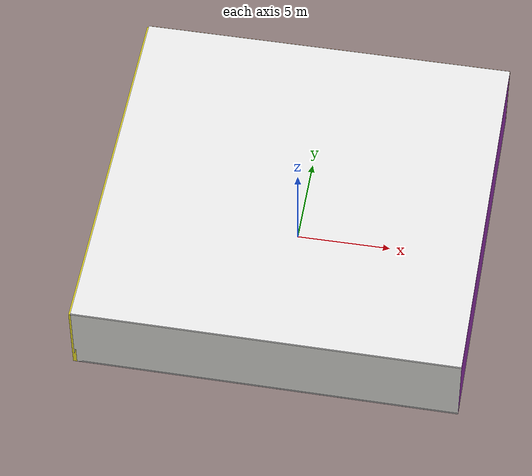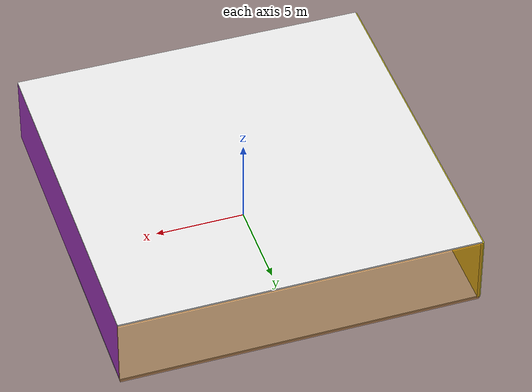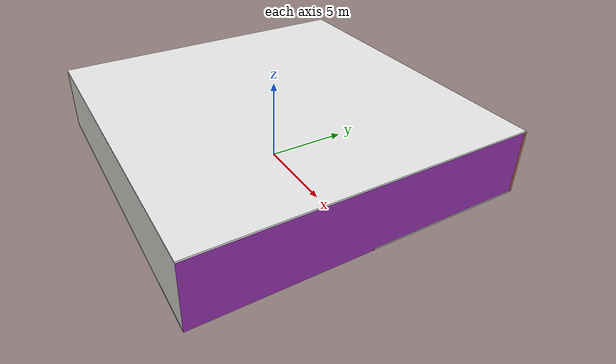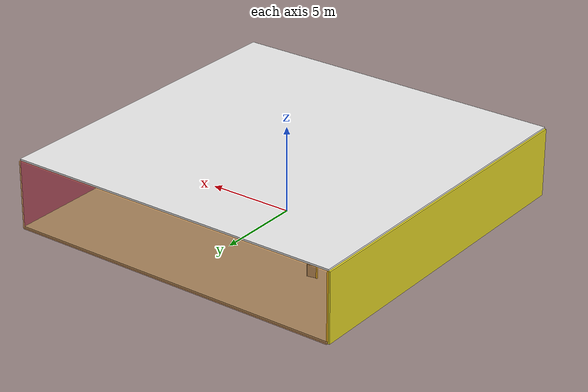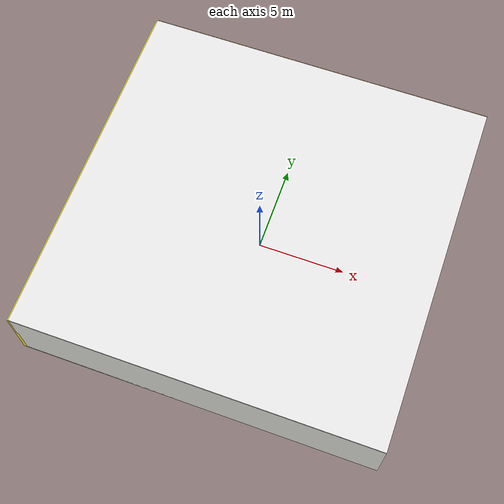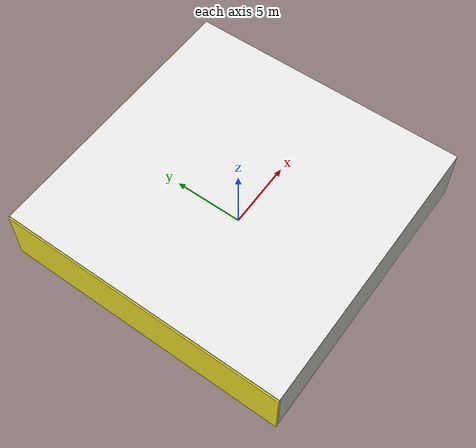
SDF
<sdf version="1.4">
 <world name="default">
  <physics type="ode">
   <max_step_size>0.001</max_step_size>
   <real_time_factor>1</real_time_factor>
   <real_time_update_rate>1000</real_time_update_rate>
   <gravity>0 0 -9.8</gravity>
  </physics>
  <scene><ambient>0.4 0.4 0.4 1</ambient><background>0.7 0.7 0.7 1</background><shadows>1</shadows></scene>
  <model name="Surrounding">
   <static>1</static>
   <link name="Ceiling">
    <collision name="Ceiling_Collision"><geometry><box><size>20 20 0.1</size></box></geometry></collision>
    <visual name="Ceiling_Visual">
     <geometry><box><size>20 20 0.1</size></box></geometry>
     <material>
      <script><uri>file://media/materials/scripts/gazebo.material</uri><name>Gazebo/WhiteGlow</name></script>
     </material>
    </visual>
    <pose>0 0 4.05 0 0 0</pose>
   </link>
   <link name="Wall_South">
    <collision name="Wall_South_Collision">
     <geometry><box><size>20 0 4</size></box></geometry>
     <pose>0 0 2 0 -0 0</pose>
    </collision>
    <visual name="Wall_South_Visual">
     <pose>0 0 2 0 -0 0</pose>
     <geometry><box><size>20 0 4</size></box></geometry>
     <material>
      <script><uri>file://media/materials/scripts/gazebo.material</uri><name>Gazebo/CeilingTiled</name></script>
     </material>
    </visual>
    <velocity_decay><linear>0</linear><angular>0</angular></velocity_decay>
    <pose>0 -10 0 0 -0 0</pose>
   </link>
   <link name="Wall_East">
    <collision name="Wall_21_Collision">
     <geometry><box><size>20 0 4</size></box></geometry>
     <pose>0 0 2 0 -0 0</pose>
    </collision>
    <visual name="Wall_21_Visual">
     <pose>0 0 2 0 -0 0</pose>
     <geometry><box><size>20 0 4</size></box></geometry>
     <material>
      <script><uri>file://media/materials/scripts/gazebo.material</uri><name>Gazebo/PurpleGlow</name></script>
     </material>
    </visual>
    <velocity_decay><linear>0</linear><angular>0</angular></velocity_decay>
    <pose>10 0 0 0 -0 1.5708</pose>
   </link>
   <link name="Wall_North">
    <collision name="Wall_22_Collision">
     <geometry><box><size>20 0.2 4</size></box></geometry>
     <pose>0 0 2 0 -0 0</pose>
    </collision>
    <visual name="Wall_22_Visual">
     <pose>0 0 2 0 -0 0</pose>
     <geometry><box><size>20 0.2 4</size></box></geometry>
     <material>
      <script>
       <uri>file://media/materials/scripts/gazebo.material</uri>
       <name>Gazebo/OrangeTransparent</name>
      </script>
     </material>
    </visual>
    <velocity_decay><linear>0</linear><angular>0</angular></velocity_decay>
    <pose>0 10 0 0 -0 0</pose>
   </link>
   <link name="Wall_West">
    <collision name="Wall_23_Collision">
     <geometry><box><size>20 0.2 4</size></box></geometry>
     <pose>0 0 2 0 -0 0</pose>
    </collision>
    <visual name="Wall_23_Visual">
     <pose>0 0 2 0 -0 0</pose>
     <geometry><box><size>20 0.2 4</size></box></geometry>
     <material>
      <script><uri>file://media/materials/scripts/gazebo.material</uri><name>Gazebo/Yellow</name></script>
     </material>
    </visual>
    <velocity_decay><linear>0</linear><angular>0</angular></velocity_decay>
    <pose>-10 0 0 0 0 -1.5708</pose>
   </link>
   <link name="Ground_link">
    <collision name="collision">
     <pose>0 0 .05 0 -0 0</pose>
     <geometry><box><size>20 20 0.1</size></box></geometry>
    </collision>
    <visual name="visual">
     <pose>0 0 .05 0 -0 0</pose>
     <geometry><box><size>20 20 0.1</size></box></geometry>
     <material>
      <script><uri>file://media/materials/scripts/gazebo.material</uri><name>Gazebo/LightOff</name></script>
     </material>
    </visual>
   </link>
   <static>1</static>
  </model>
  <spherical_coordinates>
   <surface_model>EARTH_WGS84</surface_model>
   <latitude_deg>0</latitude_deg>
   <longitude_deg>0</longitude_deg>
   <elevation>0</elevation>
   <heading_deg>0</heading_deg>
  </spherical_coordinates>
  <light name="lightball_0" type="diffuse">
   <diffuse>0.8 0.8 0.8 1</diffuse>
   <specular>0.2 0.2 0.2 1</specular>
   <attenuation>
    <range>100</range>
    <constant>0.7</constant>
    <linear>0.01</linear>
    <quadratic>0.001</quadratic>
   </attenuation>
   <direction>-0.5 0.1 -0.9</direction>
   <pose>5.58242731846 5.06463295265 2.6469168556 0 0 0</pose>
  </light>
  <light name="lightball_1" type="diffuse">
   <diffuse>0.8 0.8 0.8 1</diffuse>
   <specular>0.2 0.2 0.2 1</specular>
   <attenuation>
    <range>100</range>
    <constant>0.7</constant>
    <linear>0.01</linear>
    <quadratic>0.001</quadratic>
   </attenuation>
   <direction>-0.5 0.1 -0.9</direction>
   <pose>-1.53735338412 -2.91005031837 1.53375866687 0 0 0</pose>
  </light>
  <light name="lightball_2" type="diffuse">
   <diffuse>0.8 0.8 0.8 1</diffuse>
   <specular>0.2 0.2 0.2 1</specular>
   <attenuation>
    <range>100</range>
    <constant>0.7</constant>
    <linear>0.01</linear>
    <quadratic>0.001</quadratic>
   </attenuation>
   <direction>-0.5 0.1 -0.9</direction>
   <pose>-1.66986446745 2.45753337916 2.35336469354 0 0 0</pose>
  </light>
  <light name="lightball_3" type="diffuse">
   <diffuse>0.8 0.8 0.8 1</diffuse>
   <specular>0.2 0.2 0.2 1</specular>
   <attenuation>
    <range>100</range>
    <constant>0.7</constant>
    <linear>0.01</linear>
    <quadratic>0.001</quadratic>
   </attenuation>
   <direction>-0.5 0.1 -0.9</direction>
   <pose>6.80340350678 7.04220028919 1.10445825067 0 0 0</pose>
  </light>
  <light name="lightball_4" type="diffuse">
   <diffuse>0.8 0.8 0.8 1</diffuse>
   <specular>0.2 0.2 0.2 1</specular>
   <attenuation>
    <range>100</range>
    <constant>0.7</constant>
    <linear>0.01</linear>
    <quadratic>0.001</quadratic>
   </attenuation>
   <direction>-0.5 0.1 -0.9</direction>
   <pose>-8.1151637801 -2.70028896771 2.88359461944 0 0 0</pose>
  </light>
  <light name="lightball_5" type="diffuse">
   <diffuse>0.8 0.8 0.8 1</diffuse>
   <specular>0.2 0.2 0.2 1</specular>
   <attenuation>
    <range>100</range>
    <constant>0.7</constant>
    <linear>0.01</linear>
    <quadratic>0.001</quadratic>
   </attenuation>
   <direction>-0.5 0.1 -0.9</direction>
   <pose>6.94799102438 -6.74136890592 3.09243117695 0 0 0</pose>
  </light>
  <light name="lightball_6" type="diffuse">
   <diffuse>0.8 0.8 0.8 1</diffuse>
   <specular>0.2 0.2 0.2 1</specular>
   <attenuation>
    <range>100</range>
    <constant>0.7</constant>
    <linear>0.01</linear>
    <quadratic>0.001</quadratic>
   </attenuation>
   <direction>-0.5 0.1 -0.9</direction>
   <pose>3.2638645485 -2.85563048541 2.36717648949 0 0 0</pose>
  </light>
  <include>
   <uri>model://construction_cone</uri>
   <pose>-6.50361628652 -5.41801288429 0 0 0 2.81327572192</pose>
  </include>
  <include>
   <uri>model://construction_cone</uri>
   <pose>-3.8685374389 -2.32154259783 0 0 0 0.622693627697</pose>
  </include>
  <include>
   <uri>model://robocup_3Dsim_goal</uri>
   <pose>-5.60939854721 4.18477814756 0 0 0 0.21641466006</pose>
  </include>
  <include>
   <uri>model://construction_cone</uri>
   <pose>-1.27195905177 2.63779851656 0 0 0 0.384597954407</pose>
  </include>
 </world>
</sdf>

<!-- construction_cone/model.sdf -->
<sdf version="1.5">
  <model name="Construction Cone">
    <link name="link">
      <collision name="collision">
        <geometry>
          <mesh>
            <scale>10 10 10</scale>
            <uri>file://isr-testbed/construction_cone/meshes/construction_cone.dae</uri>
          </mesh>
        </geometry>
      </collision>
      <visual name="visual">
        <geometry>
          <mesh>
            <scale>10 10 10</scale>
            <uri>file://isr-testbed/construction_cone/meshes/construction_cone.dae</uri>
          </mesh>
        </geometry>
      </visual>
    </link>
  </model>
</sdf>

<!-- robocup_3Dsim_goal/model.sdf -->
<sdf version="1.5">
  <model name="robocup_3d_goal">
    <static>true</static>
    <link name="left_post">
      <pose>0 1.05 0.45 0 0 0</pose>
      <collision name="collision">
        <geometry>
          <cylinder>
            <radius>0.05</radius>
            <length>0.9</length>
          </cylinder>
        </geometry>
      </collision>
      <visual name="visual">
        <geometry>
          <cylinder>
            <radius>0.05</radius>
            <length>0.9</length>
          </cylinder>
        </geometry>
        <material>
          <script>
            <uri>file://media/materials/scripts/gazebo.material</uri>
            <name>Gazebo/ZincYellow</name>
          </script>
        </material>
      </visual>
    </link>
    <link name="left_support_horiz_lower">
      <pose>0.30 1.05 0.01 0 0 0</pose>
      <collision name="collision">
        <geometry>
          <box>
            <size>0.50 0.02 0.02</size>
          </box>
        </geometry>
      </collision>
      <visual name="visual">
        <geometry>
          <box>
            <size>0.50 0.02 0.02</size>
          </box>
        </geometry>
        <material>
          <script>
            <uri>file://media/materials/scripts/gazebo.material</uri>
            <name>Gazebo/White</name>
          </script>
        </material>
      </visual>
    </link>
    <link name="left_support_horiz_upper">
      <pose>0.30 1.05 0.79 0 0 0</pose>
      <collision name="collision">
        <geometry>
          <box>
            <size>0.50 0.02 0.02</size>
          </box>
        </geometry>
      </collision>
      <visual name="visual">
        <geometry>
          <box>
            <size>0.50 0.02 0.02</size>
          </box>
        </geometry>
        <material>
          <script>
            <uri>file://media/materials/scripts/gazebo.material</uri>
            <name>Gazebo/White</name>
          </script>
        </material>
      </visual>
    </link>
    <link name="left_support_vertical">
      <pose>0.56 1.05 0.4 0 1.5708 0</pose>
      <collision name="collision">
        <geometry>
          <box>
            <size>0.80 0.02 0.02</size>
          </box>
        </geometry>
      </collision>
      <visual name="visual">
        <geometry>
          <box>
            <size>0.80 0.02 0.02</size>
          </box>
        </geometry>
        <material>
          <script>
            <uri>file://media/materials/scripts/gazebo.material</uri>
            <name>Gazebo/White</name>
          </script>
        </material>
      </visual>
    </link>
    <link name="right_support_horiz_lower">
      <pose>0.30 -1.05 0.01 0 0 0</pose>
      <collision name="collision">
        <geometry>
          <box>
            <size>0.50 0.02 0.02</size>
          </box>
        </geometry>
      </collision>
      <visual name="visual">
        <geometry>
          <box>
            <size>0.50 0.02 0.02</size>
          </box>
        </geometry>
        <material>
          <script>
            <uri>file://media/materials/scripts/gazebo.material</uri>
            <name>Gazebo/White</name>
          </script>
        </material>
      </visual>
    </link>
    <link name="right_support_horiz_upper">
      <pose>0.30 -1.05 0.79 0 0 0</pose>
      <collision name="collision">
        <geometry>
          <box>
            <size>0.50 0.02 0.02</size>
          </box>
        </geometry>
      </collision>
      <visual name="visual">
        <geometry>
          <box>
            <size>0.50 0.02 0.02</size>
          </box>
        </geometry>
        <material>
          <script>
            <uri>file://media/materials/scripts/gazebo.material</uri>
            <name>Gazebo/White</name>
          </script>
        </material>
      </visual>
    </link>
    <link name="right_support_vertical">
      <pose>0.56 -1.05 0.4 0 1.5708 0</pose>
      <collision name="collision">
        <geometry>
          <box>
            <size>0.80 0.02 0.02</size>
          </box>
        </geometry>
      </collision>
      <visual name="visual">
        <geometry>
          <box>
            <size>0.80 0.02 0.02</size>
          </box>
        </geometry>
        <material>
          <script>
            <uri>file://media/materials/scripts/gazebo.material</uri>
            <name>Gazebo/White</name>
          </script>
        </material>
      </visual>
    </link>
    <link name="center_support_horiz_lower">
      <pose>0.56 0 0.01 0 1.5708 0</pose>
      <collision name="collision">
        <geometry>
          <box>
            <size>0.02 2.08 0.02</size>
          </box>
        </geometry>
      </collision>
      <visual name="visual">
        <geometry>
          <box>
            <size>0.02 2.08 0.02</size>
          </box>
        </geometry>
        <material>
          <script>
            <uri>file://media/materials/scripts/gazebo.material</uri>
            <name>Gazebo/White</name>
          </script>
        </material>
      </visual>
    </link>
    <link name="center_support_horiz_upper">
      <pose>0.56 0 0.79 0 1.5708 0</pose>
      <collision name="collision">
        <geometry>
          <box>
            <size>0.02 2.08 0.02</size>
          </box>
        </geometry>
      </collision>
      <visual name="visual">
        <geometry>
          <box>
            <size>0.02 2.08 0.02</size>
          </box>
        </geometry>
        <material>
          <script>
            <uri>file://media/materials/scripts/gazebo.material</uri>
            <name>Gazebo/White</name>
          </script>
        </material>
      </visual>
    </link>
    <link name="right_post">
      <pose>0 -1.05 0.45 0 0 0</pose>
      <collision name="collision">
        <geometry>
          <cylinder>
            <radius>0.05</radius>
            <length>0.9</length>
          </cylinder>
        </geometry>
      </collision>
      <visual name="visual">
        <geometry>
          <cylinder>
            <radius>0.05</radius>
            <length>0.9</length>
          </cylinder>
        </geometry>
        <material>
          <script>
            <uri>file://media/materials/scripts/gazebo.material</uri>
            <name>Gazebo/ZincYellow</name>
          </script>
        </material>
      </visual>
    </link>
    <link name="crossbar">
      <pose>0 0 0.85 1.57 1.57 0</pose>
      <collision name="collision">
        <geometry>
          <cylinder>
            <radius>0.05</radius>
            <length>2.0</length>
          </cylinder>
        </geometry>
      </collision>
      <visual name="visual">
        <geometry>
          <cylinder>
            <radius>0.05</radius>
            <length>2.0</length>
          </cylinder>
        </geometry>
        <material>
          <script>
            <uri>file://media/materials/scripts/gazebo.material</uri>
            <name>Gazebo/ZincYellow</name>
          </script>
        </material>
      </visual>
    </link>
    <link name="center_net">
      <pose>0.56 0 0.40 0 0 0</pose>
      <collision name="collision">
        <geometry>
          <box>
            <size>0.01 2.1 0.80</size>
          </box>
        </geometry>
      </collision>
      <visual name="visual">
        <geometry>
          <box>
            <size>0.01 2.1 0.80</size>
          </box>
        </geometry>
        <material>
          <script>
            <uri>model://../model_source/models/robocup09_spl_field/materials/scripts/</uri>
            <uri>model://../model_source/models/robocup09_spl_field/materials/textures/</uri>
            <name>RoboCup/Net</name>
          </script>
        </material>
      </visual>
    </link>
    <link name="left_net">
      <pose>0.30 1.05 0.40 0 0 0</pose>
      <collision name="collision">
        <geometry>
          <box>
            <size>0.50 0.01 0.76</size>
          </box>
        </geometry>
      </collision>
      <visual name="visual">
        <geometry>
          <box>
            <size>0.50 0.01 0.76</size>
          </box>
        </geometry>
        <material>
          <script>
            <uri>model://../model_source/models/robocup09_spl_field/materials/scripts/</uri>
            <uri>model://../model_source/models/robocup09_spl_field/materials/textures/</uri>
            <name>RoboCup/Net</name>
          </script>
        </material>
      </visual>
    </link>
    <link name="right_net">
      <pose>0.30 -1.05 0.40 0 0 0</pose>
      <collision name="collision">
        <geometry>
          <box>
            <size>0.50 0.01 0.76</size>
          </box>
        </geometry>
      </collision>
      <visual name="visual">
        <geometry>
          <box>
            <size>0.50 0.01 0.76</size>
          </box>
        </geometry>
        <material>
          <script>
            <uri>model://../model_source/models/robocup09_spl_field/materials/scripts/</uri>
            <uri>model://../model_source/models/robocup09_spl_field/materials/textures/</uri>
            <name>RoboCup/Net</name>
          </script>
        </material>
      </visual>
    </link>
  </model>
</sdf>
